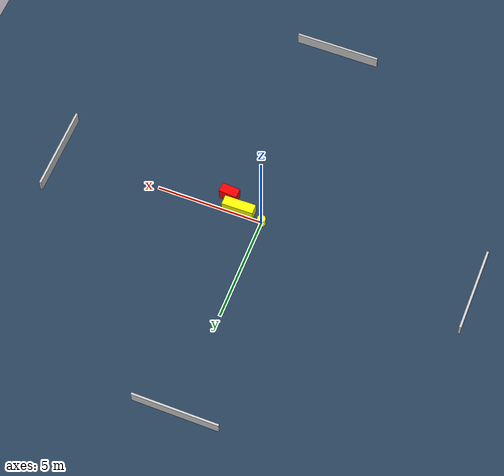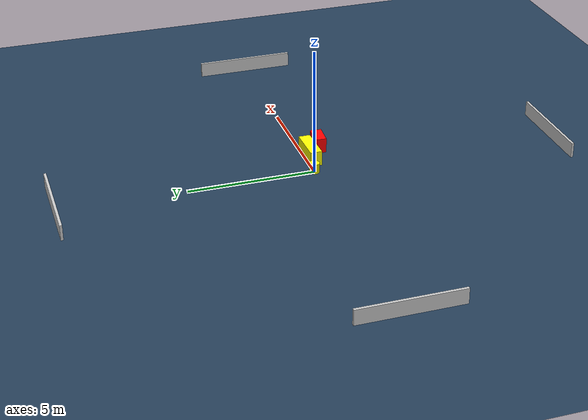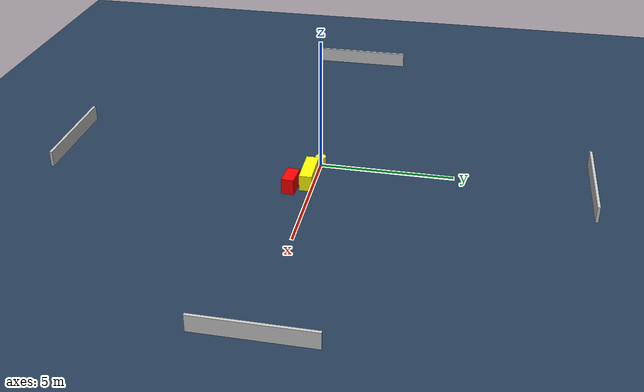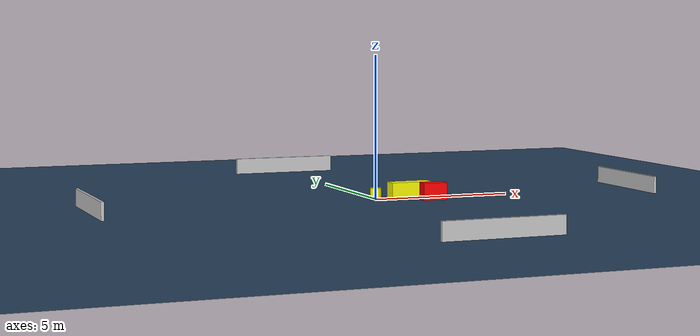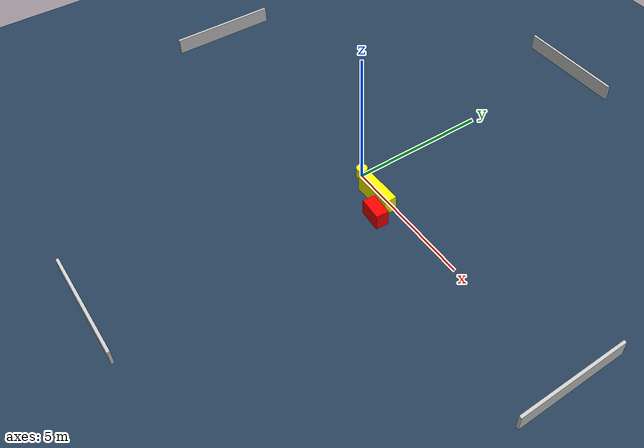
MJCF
<?xml version="1.0" ?>
<mujoco model="generated_environment">
  <option timestep="0.01" integrator="RK4" cone="elliptic"/>
  <default>
    <geom density="1"/>
  </default>
  <asset>
    <texture builtin="gradient" height="3072" name="skybox" rgb1="0.3 0.5 0.7" rgb2="0 0 0" type="skybox" width="512"/>
    <texture builtin="checker" height="300" name="groundplane" rgb1="0.2 0.3 0.4" rgb2="0.1 0.2 0.3" type="2d" width="300"/>
    <material name="groundplane" reflectance="0.2" texrepeat="5 5" texture="groundplane"/>
  </asset>
  <worldbody>
    <light dir="0 0 -1" directional="true" pos="0 0 1.5"/>
    <geom condim="3" friction="0.5 0.005 0.001" material="groundplane" name="floor" pos="0 0 0" size="0 0 0.05" type="plane"/>
    <body name="walls">
      <geom name="wall_1" condim="4" pos="-10.0 0.0 0.3" rgba="0.800000011920929 0.800000011920929 0.800000011920929 1.0" size="0.05 2.0 0.3" type="box"/>
      <geom name="wall_2" condim="4" pos="10.0 0.0 0.3" rgba="0.800000011920929 0.800000011920929 0.800000011920929 1.0" size="0.05 2.0 0.3" type="box"/>
      <geom name="wall_3" condim="4" pos="0.0 -10.0 0.3" rgba="0.800000011920929 0.800000011920929 0.800000011920929 1.0" size="2.0 0.05 0.3" type="box"/>
      <geom name="wall_4" condim="4" pos="0.0 10.0 0.3" rgba="0.800000011920929 0.800000011920929 0.800000011920929 1.0" size="2.0 0.05 0.3" type="box"/>
    </body>
    <body name="robot">
      <joint name="joint_x" type="slide" pos="0 0 0" axis="1 0 0"/>
      <joint name="joint_y" type="slide" pos="0 0 0" axis="0 1 0"/>
      <geom name="robot" type="cylinder" pos="0.0 0.0 0.2" size="0.2 0.2 0.0" mass="5.0" friction="1.0 0.005 0.0001" condim="4" rgba="1.0 1.0 0.0 1.0"/>
    </body>
    <body name="obstacle_1_movable">
      <geom name="obstacle_1_movable" condim="4" pos="1.1800832451303194 -0.21152022292438094 0.3" euler="0 0 270.7685635333447" friction="0.0 0.005 0.001" rgba="1.0 1.0 0.0 1.0" size="0.23450232144419542 0.7384685572395824 0.3" type="box" mass="0.1"/>
      <joint type="free"/>
    </body>
    <body name="obstacle_2_static">
      <geom name="obstacle_2_static" condim="4" pos="1.84555284586246 -0.7558129541299169 0.3" euler="0 0 266.13733624543806" friction="0.0 0.005 0.001" rgba="1.0 0.0 0.0 1.0" size="0.2286144153012542 0.42540319521952336 0.3" type="box"/>
    </body>
  </worldbody>
  <actuator>
    <motor name="actuator_x" joint="joint_x" gear="1" ctrlrange="-1 1"/>
    <motor name="actuator_y" joint="joint_y" gear="1" ctrlrange="-1 1"/>
  </actuator>
</mujoco>
